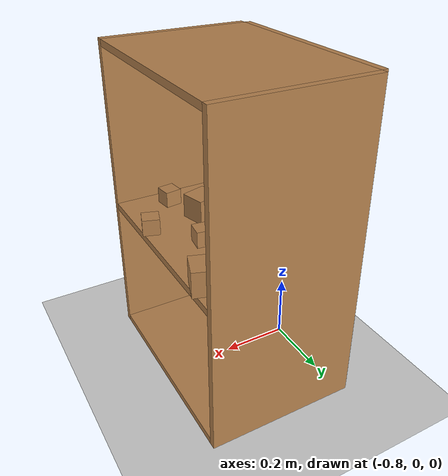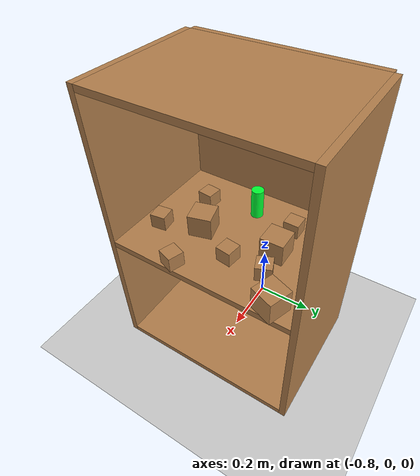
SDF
<sdf version="1.6">
 <world name="default">
  <plugin name="gazebo_geometries_plugin" filename="libgazebo_geometries_plugin.so"/>
  <plugin name="libgazebo_scene_randomiser_plugin" filename="libgazebo_scene_randomiser_plugin.so"/>
  <light name="sun" type="directional">
   <pose>0 0 10 0 -0 0</pose>
   <diffuse>0.8 0.8 0.8 1</diffuse>
   <specular>0.2 0.2 0.2 1</specular>
   <attenuation>
    <range>1000</range>
    <constant>0.9</constant>
    <linear>0.01</linear>
    <quadratic>0.001</quadratic>
   </attenuation>
   <direction>-0.5 0.1 -0.9</direction>
  </light>
  <model name="ground_plane">
   <static>1</static>
   <link name="link">
    <collision name="collision">
     <geometry><plane><normal>0 0 1</normal><size>100 100</size></plane></geometry>
     <surface>
      <contact><collide_bitmask>65535</collide_bitmask></contact>
      <friction><ode><mu>100</mu><mu2>50</mu2></ode></friction>
     </surface>
    </collision>
    <visual name="visual">
     <cast_shadows>0</cast_shadows>
     <geometry><plane><normal>0 0 1</normal><size>100 100</size></plane></geometry>
     <material>
      <script><uri>file://media/materials/scripts/gazebo.material</uri><name>Gazebo/Grey</name></script>
     </material>
    </visual>
   </link>
  </model>
  <gravity>0 0 -9.8</gravity>
  <magnetic_field>6e-06 2.3e-05 -4.2e-05</magnetic_field>
  <atmosphere type="adiabatic"/>
  <physics name="default_physics" default="0" type="ode">
   <max_step_size>0.001</max_step_size>
   <real_time_factor>1</real_time_factor>
   <real_time_update_rate>1000</real_time_update_rate>
  </physics>
  <scene><ambient>0.4 0.4 0.4 1</ambient><background>0.7 0.7 0.7 1</background><shadows>1</shadows></scene>
  <audio><device>default</device></audio>
  <spherical_coordinates>
   <surface_model>EARTH_WGS84</surface_model>
   <latitude_deg>0</latitude_deg>
   <longitude_deg>0</longitude_deg>
   <elevation>0</elevation>
   <heading_deg>0</heading_deg>
  </spherical_coordinates>
  <model name="wood_cube_5cm">
   <link name="link">
    <pose>0 0 0.025 0 -0 0</pose>
    <inertial>
     <mass>0.0565</mass>
     <inertia>
      <ixx>2.35417e-05</ixx>
      <ixy>0</ixy>
      <ixz>0</ixz>
      <iyy>2.35417e-05</iyy>
      <iyz>0</iyz>
      <izz>2.35417e-05</izz>
     </inertia>
    </inertial>
    <collision name="collision">
     <geometry><box><size>0.05 0.05 0.05</size></box></geometry>
     <surface>
      <contact>
       <poissons_ratio>0.347</poissons_ratio>
       <elastic_modulus>8.8e+09</elastic_modulus>
       <ode><kp>100000</kp><kd>1</kd><max_vel>1</max_vel><min_depth>0.001</min_depth></ode>
      </contact>
      <friction>
       <torsional>
        <coefficient>1</coefficient>
        <use_patch_radius>0</use_patch_radius>
        <surface_radius>0.05</surface_radius>
       </torsional>
      </friction>
     </surface>
    </collision>
    <visual name="visual">
     <geometry><box><size>0.05 0.05 0.05</size></box></geometry>
     <material>
      <script><uri>file://media/materials/scripts/gazebo.material</uri><name>Gazebo/Wood</name></script>
     </material>
    </visual>
   </link>
   <pose>-0.501745 0.150687 0.458999 0 0 -1.17732</pose>
  </model>
  <model name="wood_cube_5cm_0">
   <link name="link">
    <pose>0 0 0.025 0 -0 0</pose>
    <inertial>
     <mass>0.0565</mass>
     <inertia>
      <ixx>2.35417e-05</ixx>
      <ixy>0</ixy>
      <ixz>0</ixz>
      <iyy>2.35417e-05</iyy>
      <iyz>0</iyz>
      <izz>2.35417e-05</izz>
     </inertia>
    </inertial>
    <collision name="collision">
     <geometry><box><size>0.05 0.05 0.05</size></box></geometry>
     <surface>
      <contact>
       <poissons_ratio>0.347</poissons_ratio>
       <elastic_modulus>8.8e+09</elastic_modulus>
       <ode><kp>100000</kp><kd>1</kd><max_vel>1</max_vel><min_depth>0.001</min_depth></ode>
      </contact>
      <friction>
       <torsional>
        <coefficient>1</coefficient>
        <use_patch_radius>0</use_patch_radius>
        <surface_radius>0.05</surface_radius>
       </torsional>
      </friction>
     </surface>
    </collision>
    <visual name="visual">
     <geometry><box><size>0.05 0.05 0.05</size></box></geometry>
     <material>
      <script><uri>file://media/materials/scripts/gazebo.material</uri><name>Gazebo/Wood</name></script>
     </material>
    </visual>
   </link>
   <pose>-0.705949 0.14143 0.458999 0 -0 1.56159</pose>
  </model>
  <model name="wood_cube_7_5cm">
   <link name="link">
    <pose>0 0 0.0375 0 -0 0</pose>
    <inertial>
     <mass>0.2249</mass>
     <inertia>
      <ixx>0.000210844</ixx>
      <ixy>0</ixy>
      <ixz>0</ixz>
      <iyy>0.000210844</iyy>
      <iyz>0</iyz>
      <izz>0.000210844</izz>
     </inertia>
    </inertial>
    <collision name="collision">
     <geometry><box><size>0.075 0.075 0.075</size></box></geometry>
     <surface>
      <contact>
       <poissons_ratio>0.347</poissons_ratio>
       <elastic_modulus>8.8e+09</elastic_modulus>
       <ode><kp>100000</kp><kd>100</kd><max_vel>100</max_vel><min_depth>0.001</min_depth></ode>
      </contact>
      <friction>
       <torsional>
        <coefficient>1</coefficient>
        <use_patch_radius>0</use_patch_radius>
        <surface_radius>0.01</surface_radius>
       </torsional>
      </friction>
     </surface>
    </collision>
    <visual name="visual">
     <geometry><box><size>0.075 0.075 0.075</size></box></geometry>
     <material>
      <script><uri>file://media/materials/scripts/gazebo.material</uri><name>Gazebo/Wood</name></script>
     </material>
    </visual>
   </link>
   <pose>-0.593192 0.140338 0.458995 0 -0 -3.12904</pose>
  </model>
  <model name="wood_cube_5cm_1">
   <link name="link">
    <pose>0 0 0.025 0 -0 0</pose>
    <inertial>
     <mass>0.0565</mass>
     <inertia>
      <ixx>2.35417e-05</ixx>
      <ixy>0</ixy>
      <ixz>0</ixz>
      <iyy>2.35417e-05</iyy>
      <iyz>0</iyz>
      <izz>2.35417e-05</izz>
     </inertia>
    </inertial>
    <collision name="collision">
     <geometry><box><size>0.05 0.05 0.05</size></box></geometry>
     <surface>
      <contact>
       <poissons_ratio>0.347</poissons_ratio>
       <elastic_modulus>8.8e+09</elastic_modulus>
       <ode><kp>100000</kp><kd>1</kd><max_vel>1</max_vel><min_depth>0.001</min_depth></ode>
      </contact>
      <friction>
       <torsional>
        <coefficient>1</coefficient>
        <use_patch_radius>0</use_patch_radius>
        <surface_radius>0.05</surface_radius>
       </torsional>
      </friction>
     </surface>
    </collision>
    <visual name="visual">
     <geometry><box><size>0.05 0.05 0.05</size></box></geometry>
     <material>
      <script><uri>file://media/materials/scripts/gazebo.material</uri><name>Gazebo/Wood</name></script>
     </material>
    </visual>
   </link>
   <pose>-0.519815 -0.228166 0.458999 -0 -0 -1.43323</pose>
  </model>
  <model name="wood_cube_5cm_2">
   <link name="link">
    <pose>0 0 0.025 0 -0 0</pose>
    <inertial>
     <mass>0.0565</mass>
     <inertia>
      <ixx>2.35417e-05</ixx>
      <ixy>0</ixy>
      <ixz>0</ixz>
      <iyy>2.35417e-05</iyy>
      <iyz>0</iyz>
      <izz>2.35417e-05</izz>
     </inertia>
    </inertial>
    <collision name="collision">
     <geometry><box><size>0.05 0.05 0.05</size></box></geometry>
     <surface>
      <contact>
       <poissons_ratio>0.347</poissons_ratio>
       <elastic_modulus>8.8e+09</elastic_modulus>
       <ode><kp>100000</kp><kd>1</kd><max_vel>1</max_vel><min_depth>0.001</min_depth></ode>
      </contact>
      <friction>
       <torsional>
        <coefficient>1</coefficient>
        <use_patch_radius>0</use_patch_radius>
        <surface_radius>0.05</surface_radius>
       </torsional>
      </friction>
     </surface>
    </collision>
    <visual name="visual">
     <geometry><box><size>0.05 0.05 0.05</size></box></geometry>
     <material>
      <script><uri>file://media/materials/scripts/gazebo.material</uri><name>Gazebo/Wood</name></script>
     </material>
    </visual>
   </link>
   <pose>-0.50216 0.030832 0.458999 0 -0 1.44355</pose>
  </model>
  <model name="wood_cube_5cm_3">
   <link name="link">
    <pose>0 0 0.025 0 -0 0</pose>
    <inertial>
     <mass>0.0565</mass>
     <inertia>
      <ixx>2.35417e-05</ixx>
      <ixy>0</ixy>
      <ixz>0</ixz>
      <iyy>2.35417e-05</iyy>
      <iyz>0</iyz>
      <izz>2.35417e-05</izz>
     </inertia>
    </inertial>
    <collision name="collision">
     <geometry><box><size>0.05 0.05 0.05</size></box></geometry>
     <surface>
      <contact>
       <poissons_ratio>0.347</poissons_ratio>
       <elastic_modulus>8.8e+09</elastic_modulus>
       <ode><kp>100000</kp><kd>1</kd><max_vel>1</max_vel><min_depth>0.001</min_depth></ode>
      </contact>
      <friction>
       <torsional>
        <coefficient>1</coefficient>
        <use_patch_radius>0</use_patch_radius>
        <surface_radius>0.05</surface_radius>
       </torsional>
      </friction>
     </surface>
    </collision>
    <visual name="visual">
     <geometry><box><size>0.05 0.05 0.05</size></box></geometry>
     <material>
      <script><uri>file://media/materials/scripts/gazebo.material</uri><name>Gazebo/Wood</name></script>
     </material>
    </visual>
   </link>
   <pose>-0.400963 -0.094986 0.458999 -3e-06 7e-06 2.81564</pose>
  </model>
  <model name="cylinder">
   <link name="link">
    <inertial>
     <mass>0.1</mass>
     <inertia>
      <ixx>0.00013563</ixx>
      <ixy>0</ixy>
      <ixz>0</ixz>
      <iyy>0.00013563</iyy>
      <iyz>0</iyz>
      <izz>3.125e-05</izz>
     </inertia>
    </inertial>
    <visual name="visual">
     <geometry><cylinder><radius>0.02</radius><length>0.1</length></cylinder></geometry>
     <material>
      <script><name>Gazebo/Grey</name><uri>file://media/materials/scripts/gazebo.material</uri></script>
      <shader type="vertex"><normal_map>__default__</normal_map></shader>
      <ambient>0 1 0.2 1</ambient>
      <diffuse>0.7 0.7 0.7 1</diffuse>
      <specular>0.01 0.01 0.01 1</specular>
      <emissive>0 0 0 1</emissive>
     </material>
    </visual>
    <collision name="collision">
     <geometry><cylinder><radius>0.02</radius><length>0.1</length></cylinder></geometry>
     <surface>
      <friction>
       <ode><mu>1</mu><mu2>1</mu2><fdir1>0 0 0</fdir1><slip1>0</slip1><slip2>0</slip2></ode>
       <torsional>
        <coefficient>1</coefficient>
        <patch_radius>0</patch_radius>
        <surface_radius>0</surface_radius>
        <use_patch_radius>1</use_patch_radius>
        <ode><slip>0</slip></ode>
       </torsional>
      </friction>
      <bounce><restitution_coefficient>0</restitution_coefficient><threshold>1e+06</threshold></bounce>
      <contact>
       <collide_without_contact>0</collide_without_contact>
       <collide_without_contact_bitmask>1</collide_without_contact_bitmask>
       <collide_bitmask>1</collide_bitmask>
       <ode>
        <soft_cfm>0</soft_cfm>
        <soft_erp>0.2</soft_erp>
        <kp>1e+07</kp>
        <kd>1</kd>
        <max_vel>0.1</max_vel>
        <min_depth>0.001</min_depth>
       </ode>
       <bullet>
        <split_impulse>1</split_impulse>
        <split_impulse_penetration_threshold>-0.01</split_impulse_penetration_threshold>
        <soft_cfm>0</soft_cfm>
        <soft_erp>0.2</soft_erp>
        <kp>1e+07</kp>
        <kd>1</kd>
       </bullet>
      </contact>
     </surface>
    </collision>
   </link>
   <static>0</static>
   <pose>-0.719398 0.002783 0.509028 0.000118 -0.000878 -0.876875</pose>
  </model>
  <model name="wood_cube_7_5cm_0">
   <link name="link">
    <pose>0 0 0.0375 0 -0 0</pose>
    <inertial>
     <mass>0.2249</mass>
     <inertia>
      <ixx>0.000210844</ixx>
      <ixy>0</ixy>
      <ixz>0</ixz>
      <iyy>0.000210844</iyy>
      <iyz>0</iyz>
      <izz>0.000210844</izz>
     </inertia>
    </inertial>
    <collision name="collision">
     <geometry><box><size>0.075 0.075 0.075</size></box></geometry>
     <surface>
      <contact>
       <poissons_ratio>0.347</poissons_ratio>
       <elastic_modulus>8.8e+09</elastic_modulus>
       <ode><kp>100000</kp><kd>100</kd><max_vel>100</max_vel><min_depth>0.001</min_depth></ode>
      </contact>
      <friction>
       <torsional>
        <coefficient>1</coefficient>
        <use_patch_radius>0</use_patch_radius>
        <surface_radius>0.01</surface_radius>
       </torsional>
      </friction>
     </surface>
    </collision>
    <visual name="visual">
     <geometry><box><size>0.075 0.075 0.075</size></box></geometry>
     <material>
      <script><uri>file://media/materials/scripts/gazebo.material</uri><name>Gazebo/Wood</name></script>
     </material>
    </visual>
   </link>
   <pose>-0.409575 0.221763 0.458996 1.7e-05 1e-06 -1.90936</pose>
  </model>
  <model name="wood_cube_7_5cm_1">
   <link name="link">
    <pose>0 0 0.0375 0 -0 0</pose>
    <inertial>
     <mass>0.2249</mass>
     <inertia>
      <ixx>0.000210844</ixx>
      <ixy>0</ixy>
      <ixz>0</ixz>
      <iyy>0.000210844</iyy>
      <iyz>0</iyz>
      <izz>0.000210844</izz>
     </inertia>
    </inertial>
    <collision name="collision">
     <geometry><box><size>0.075 0.075 0.075</size></box></geometry>
     <surface>
      <contact>
       <poissons_ratio>0.347</poissons_ratio>
       <elastic_modulus>8.8e+09</elastic_modulus>
       <ode><kp>100000</kp><kd>100</kd><max_vel>100</max_vel><min_depth>0.001</min_depth></ode>
      </contact>
      <friction>
       <torsional>
        <coefficient>1</coefficient>
        <use_patch_radius>0</use_patch_radius>
        <surface_radius>0.01</surface_radius>
       </torsional>
      </friction>
     </surface>
    </collision>
    <visual name="visual">
     <geometry><box><size>0.075 0.075 0.075</size></box></geometry>
     <material>
      <script><uri>file://media/materials/scripts/gazebo.material</uri><name>Gazebo/Wood</name></script>
     </material>
    </visual>
   </link>
   <pose>-0.567262 -0.101461 0.458995 0 -0 -1.30682</pose>
  </model>
  <model name="wood_cube_5cm_4">
   <link name="link">
    <pose>0 0 0.025 0 -0 0</pose>
    <inertial>
     <mass>0.0565</mass>
     <inertia>
      <ixx>2.35417e-05</ixx>
      <ixy>0</ixy>
      <ixz>0</ixz>
      <iyy>2.35417e-05</iyy>
      <iyz>0</iyz>
      <izz>2.35417e-05</izz>
     </inertia>
    </inertial>
    <collision name="collision">
     <geometry><box><size>0.05 0.05 0.05</size></box></geometry>
     <surface>
      <contact>
       <poissons_ratio>0.347</poissons_ratio>
       <elastic_modulus>8.8e+09</elastic_modulus>
       <ode><kp>100000</kp><kd>1</kd><max_vel>1</max_vel><min_depth>0.001</min_depth></ode>
      </contact>
      <friction>
       <torsional>
        <coefficient>1</coefficient>
        <use_patch_radius>0</use_patch_radius>
        <surface_radius>0.05</surface_radius>
       </torsional>
      </friction>
     </surface>
    </collision>
    <visual name="visual">
     <geometry><box><size>0.05 0.05 0.05</size></box></geometry>
     <material>
      <script><uri>file://media/materials/scripts/gazebo.material</uri><name>Gazebo/Wood</name></script>
     </material>
    </visual>
   </link>
   <pose>-0.689762 -0.163214 0.458999 0 -0 3.03449</pose>
  </model>
  <model name="cabinet">
   <link name="link">
    <inertial>
     <pose>0 0 -1 0 -0 0</pose>
     <inertia><ixx>2.05</ixx><ixy>0</ixy><ixz>0</ixz><iyy>2.05</iyy><iyz>0</iyz><izz>2.05</izz></inertia>
     <mass>25</mass>
    </inertial>
    <visual name="back_plate_visual">
     <pose>0.235 0 0.48 0 -0 0</pose>
     <geometry><box><size>0.02 0.6 0.96</size></box></geometry>
     <material>
      <script><uri>file://media/materials/scripts/gazebo.material</uri><name>Gazebo/Wood</name></script>
      <shader type="vertex"><normal_map>__default__</normal_map></shader>
      <ambient>1 1 1 1</ambient>
      <diffuse>1 1 1 1</diffuse>
      <specular>0.2 0.2 0.2 1</specular>
      <emissive>0 0 0 1</emissive>
     </material>
    </visual>
    <visual name="right_plate_visual">
     <pose>0 -0.31 0.48 0 -0 0</pose>
     <geometry><box><size>0.45 0.02 0.96</size></box></geometry>
     <material>
      <script><uri>file://media/materials/scripts/gazebo.material</uri><name>Gazebo/Wood</name></script>
      <shader type="vertex"><normal_map>__default__</normal_map></shader>
      <ambient>1 1 1 1</ambient>
      <diffuse>1 1 1 1</diffuse>
      <specular>0.2 0.2 0.2 1</specular>
      <emissive>0 0 0 1</emissive>
     </material>
    </visual>
    <visual name="middle_plate_visual">
     <pose>0 0 0.45 0 -0 0</pose>
     <geometry><box><size>0.45 0.6 0.02</size></box></geometry>
     <material>
      <script><uri>file://media/materials/scripts/gazebo.material</uri><name>Gazebo/Wood</name></script>
      <shader type="vertex"><normal_map>__default__</normal_map></shader>
      <ambient>1 1 1 1</ambient>
      <diffuse>1 1 1 1</diffuse>
      <specular>0.2 0.2 0.2 1</specular>
      <emissive>0 0 0 1</emissive>
     </material>
    </visual>
    <visual name="left_plate_visual">
     <pose>0 0.31 0.48 0 -0 0</pose>
     <geometry><box><size>0.45 0.02 0.96</size></box></geometry>
     <material>
      <script><uri>file://media/materials/scripts/gazebo.material</uri><name>Gazebo/Wood</name></script>
      <shader type="vertex"><normal_map>__default__</normal_map></shader>
      <ambient>1 1 1 1</ambient>
      <diffuse>1 1 1 1</diffuse>
      <specular>0.2 0.2 0.2 1</specular>
      <emissive>0 0 0 1</emissive>
     </material>
    </visual>
    <visual name="bottom_plate_geom_visual">
     <pose>0 0 0.01 0 -0 0</pose>
     <geometry><box><size>0.45 0.6 0.02</size></box></geometry>
     <material>
      <script><uri>file://media/materials/scripts/gazebo.material</uri><name>Gazebo/Wood</name></script>
      <shader type="vertex"><normal_map>__default__</normal_map></shader>
      <ambient>1 1 1 1</ambient>
      <diffuse>1 1 1 1</diffuse>
      <specular>0.2 0.2 0.2 1</specular>
      <emissive>0 0 0 1</emissive>
     </material>
    </visual>
    <visual name="top_plate_visual">
     <pose>0 0 0.95 0 -0 0</pose>
     <geometry><box><size>0.45 0.6 0.02</size></box></geometry>
     <material>
      <script><uri>file://media/materials/scripts/gazebo.material</uri><name>Gazebo/Wood</name></script>
      <shader type="vertex"><normal_map>__default__</normal_map></shader>
      <ambient>1 1 1 1</ambient>
      <diffuse>1 1 1 1</diffuse>
      <specular>0.2 0.2 0.2 1</specular>
      <emissive>0 0 0 1</emissive>
     </material>
    </visual>
    <collision name="top_plate">
     <pose>0 0 0.95 0 -0 0</pose>
     <geometry><box><size>0.45 0.6 0.02</size></box></geometry>
     <surface>
      <friction>
       <ode><mu>1</mu><mu2>1</mu2><fdir1>0 0 0</fdir1><slip1>0</slip1><slip2>0</slip2></ode>
       <torsional>
        <coefficient>1</coefficient>
        <patch_radius>0</patch_radius>
        <surface_radius>0</surface_radius>
        <use_patch_radius>1</use_patch_radius>
        <ode><slip>0</slip></ode>
       </torsional>
      </friction>
      <bounce><restitution_coefficient>0</restitution_coefficient><threshold>1e+06</threshold></bounce>
      <contact>
       <collide_without_contact>0</collide_without_contact>
       <collide_without_contact_bitmask>1</collide_without_contact_bitmask>
       <collide_bitmask>1</collide_bitmask>
       <ode>
        <soft_cfm>0</soft_cfm>
        <soft_erp>0.2</soft_erp>
        <kp>1e+13</kp>
        <kd>1</kd>
        <max_vel>0.01</max_vel>
        <min_depth>0</min_depth>
       </ode>
       <bullet>
        <split_impulse>1</split_impulse>
        <split_impulse_penetration_threshold>-0.01</split_impulse_penetration_threshold>
        <soft_cfm>0</soft_cfm>
        <soft_erp>0.2</soft_erp>
        <kp>1e+13</kp>
        <kd>1</kd>
       </bullet>
      </contact>
     </surface>
    </collision>
    <collision name="right_plate">
     <pose>0 -0.31 0.48 0 -0 0</pose>
     <geometry><box><size>0.45 0.02 0.96</size></box></geometry>
     <surface>
      <friction>
       <ode><mu>1</mu><mu2>1</mu2><fdir1>0 0 0</fdir1><slip1>0</slip1><slip2>0</slip2></ode>
       <torsional>
        <coefficient>1</coefficient>
        <patch_radius>0</patch_radius>
        <surface_radius>0</surface_radius>
        <use_patch_radius>1</use_patch_radius>
        <ode><slip>0</slip></ode>
       </torsional>
      </friction>
      <bounce><restitution_coefficient>0</restitution_coefficient><threshold>1e+06</threshold></bounce>
      <contact>
       <collide_without_contact>0</collide_without_contact>
       <collide_without_contact_bitmask>1</collide_without_contact_bitmask>
       <collide_bitmask>1</collide_bitmask>
       <ode>
        <soft_cfm>0</soft_cfm>
        <soft_erp>0.2</soft_erp>
        <kp>1e+13</kp>
        <kd>1</kd>
        <max_vel>0.01</max_vel>
        <min_depth>0</min_depth>
       </ode>
       <bullet>
        <split_impulse>1</split_impulse>
        <split_impulse_penetration_threshold>-0.01</split_impulse_penetration_threshold>
        <soft_cfm>0</soft_cfm>
        <soft_erp>0.2</soft_erp>
        <kp>1e+13</kp>
        <kd>1</kd>
       </bullet>
      </contact>
     </surface>
    </collision>
    <collision name="back_plate">
     <pose>0.235 0 0.48 0 -0 0</pose>
     <geometry><box><size>0.02 0.6 0.96</size></box></geometry>
     <surface>
      <friction>
       <ode><mu>1</mu><mu2>1</mu2><fdir1>0 0 0</fdir1><slip1>0</slip1><slip2>0</slip2></ode>
       <torsional>
        <coefficient>1</coefficient>
        <patch_radius>0</patch_radius>
        <surface_radius>0</surface_radius>
        <use_patch_radius>1</use_patch_radius>
        <ode><slip>0</slip></ode>
       </torsional>
      </friction>
      <bounce><restitution_coefficient>0</restitution_coefficient><threshold>1e+06</threshold></bounce>
      <contact>
       <collide_without_contact>0</collide_without_contact>
       <collide_without_contact_bitmask>1</collide_without_contact_bitmask>
       <collide_bitmask>1</collide_bitmask>
       <ode>
        <soft_cfm>0</soft_cfm>
        <soft_erp>0.2</soft_erp>
        <kp>1e+13</kp>
        <kd>1</kd>
        <max_vel>0.01</max_vel>
        <min_depth>0</min_depth>
       </ode>
       <bullet>
        <split_impulse>1</split_impulse>
        <split_impulse_penetration_threshold>-0.01</split_impulse_penetration_threshold>
        <soft_cfm>0</soft_cfm>
        <soft_erp>0.2</soft_erp>
        <kp>1e+13</kp>
        <kd>1</kd>
       </bullet>
      </contact>
     </surface>
    </collision>
    <collision name="left_plate">
     <pose>0 0.31 0.48 0 -0 0</pose>
     <geometry><box><size>0.45 0.02 0.96</size></box></geometry>
     <surface>
      <friction>
       <ode><mu>1</mu><mu2>1</mu2><fdir1>0 0 0</fdir1><slip1>0</slip1><slip2>0</slip2></ode>
       <torsional>
        <coefficient>1</coefficient>
        <patch_radius>0</patch_radius>
        <surface_radius>0</surface_radius>
        <use_patch_radius>1</use_patch_radius>
        <ode><slip>0</slip></ode>
       </torsional>
      </friction>
      <bounce><restitution_coefficient>0</restitution_coefficient><threshold>1e+06</threshold></bounce>
      <contact>
       <collide_without_contact>0</collide_without_contact>
       <collide_without_contact_bitmask>1</collide_without_contact_bitmask>
       <collide_bitmask>1</collide_bitmask>
       <ode>
        <soft_cfm>0</soft_cfm>
        <soft_erp>0.2</soft_erp>
        <kp>1e+13</kp>
        <kd>1</kd>
        <max_vel>0.01</max_vel>
        <min_depth>0</min_depth>
       </ode>
       <bullet>
        <split_impulse>1</split_impulse>
        <split_impulse_penetration_threshold>-0.01</split_impulse_penetration_threshold>
        <soft_cfm>0</soft_cfm>
        <soft_erp>0.2</soft_erp>
        <kp>1e+13</kp>
        <kd>1</kd>
       </bullet>
      </contact>
     </surface>
    </collision>
    <collision name="middle_plate">
     <pose>0 0 0.45 0 -0 0</pose>
     <geometry><box><size>0.45 0.6 0.02</size></box></geometry>
     <surface>
      <friction>
       <ode><mu>1</mu><mu2>1</mu2><fdir1>0 0 0</fdir1><slip1>0</slip1><slip2>0</slip2></ode>
       <torsional>
        <coefficient>1</coefficient>
        <patch_radius>0</patch_radius>
        <surface_radius>0</surface_radius>
        <use_patch_radius>1</use_patch_radius>
        <ode><slip>0</slip></ode>
       </torsional>
      </friction>
      <bounce><restitution_coefficient>0</restitution_coefficient><threshold>1e+06</threshold></bounce>
      <contact>
       <collide_without_contact>0</collide_without_contact>
       <collide_without_contact_bitmask>1</collide_without_contact_bitmask>
       <collide_bitmask>1</collide_bitmask>
       <ode>
        <soft_cfm>0</soft_cfm>
        <soft_erp>0.2</soft_erp>
        <kp>1e+13</kp>
        <kd>1</kd>
        <max_vel>0.01</max_vel>
        <min_depth>0</min_depth>
       </ode>
       <bullet>
        <split_impulse>1</split_impulse>
        <split_impulse_penetration_threshold>-0.01</split_impulse_penetration_threshold>
        <soft_cfm>0</soft_cfm>
        <soft_erp>0.2</soft_erp>
        <kp>1e+13</kp>
        <kd>1</kd>
       </bullet>
      </contact>
     </surface>
    </collision>
    <collision name="bottom_plate_geom">
     <pose>0 0 0.01 0 -0 0</pose>
     <geometry><box><size>0.45 0.6 0.02</size></box></geometry>
     <surface>
      <friction>
       <ode><mu>1</mu><mu2>1</mu2><fdir1>0 0 0</fdir1><slip1>0</slip1><slip2>0</slip2></ode>
       <torsional>
        <coefficient>1</coefficient>
        <patch_radius>0</patch_radius>
        <surface_radius>0</surface_radius>
        <use_patch_radius>1</use_patch_radius>
        <ode><slip>0</slip></ode>
       </torsional>
      </friction>
      <bounce><restitution_coefficient>0</restitution_coefficient><threshold>1e+06</threshold></bounce>
      <contact>
       <collide_without_contact>0</collide_without_contact>
       <collide_without_contact_bitmask>1</collide_without_contact_bitmask>
       <collide_bitmask>1</collide_bitmask>
       <ode>
        <soft_cfm>0</soft_cfm>
        <soft_erp>0.2</soft_erp>
        <kp>1e+13</kp>
        <kd>1</kd>
        <max_vel>0.01</max_vel>
        <min_depth>0</min_depth>
       </ode>
       <bullet>
        <split_impulse>1</split_impulse>
        <split_impulse_penetration_threshold>-0.01</split_impulse_penetration_threshold>
        <soft_cfm>0</soft_cfm>
        <soft_erp>0.2</soft_erp>
        <kp>1e+13</kp>
        <kd>1</kd>
       </bullet>
      </contact>
     </surface>
    </collision>
   </link>
   <static>1</static>
   <pose>-0.6 0 0 0 -0 3.14</pose>
  </model>
 </world>
</sdf>
